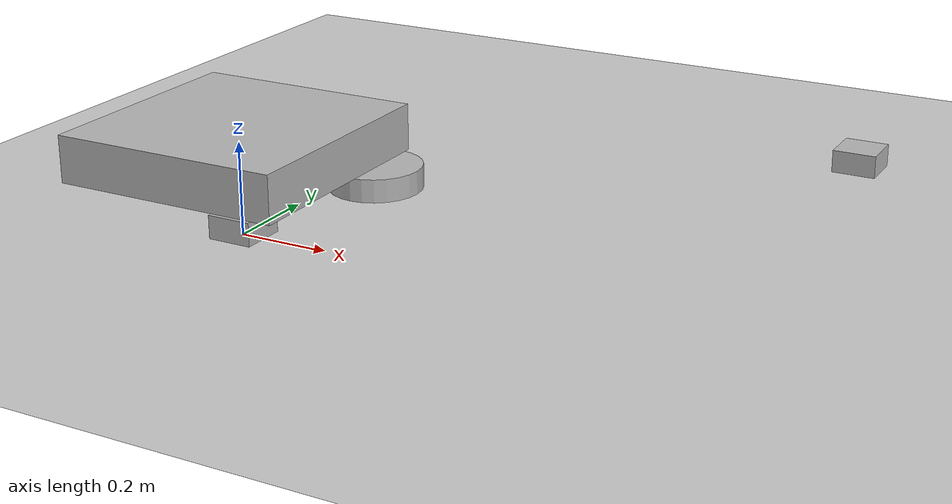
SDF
<?xml version="1.0" ?>
<sdf version="1.6">
  <world name="ethiopia_world">
    <include>
      <uri>model://ground_plane</uri>
    </include>
    <include>
      <uri>model://sun</uri>
    </include>

    <!-- Define the robot model -->
    <include>
      <uri>model://three_wheel_robot</uri>
      <pose>0 0 0.1 0 0 0</pose>
    </include>

    <!-- Define other models for states -->
    <model name="Dembi_Dollo">
      <pose>0 0 0 0 0 0</pose>
      <link name="visual">
        <visual name="visual">
          <geometry>
            <box>
              <size>0.1 0.1 0.1</size>
            </box>
          </geometry>
        </visual>
      </link>
    </model>
    <model name="Gimbi">
      <pose>1 1 0 0 0 0</pose>
      <link name="visual">
        <visual name="visual">
          <geometry>
            <box>
              <size>0.1 0.1 0.1</size>
            </box>
          </geometry>
        </visual>
      </link>
    </model>
    <!-- Add more models for other states as needed -->
  </world>
</sdf>

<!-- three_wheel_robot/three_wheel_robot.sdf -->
<sdf version="1.6">
  <model name="three_wheel_robot">
    <static>false</static>
    <link name="base_link">
      <pose>0 0 0.1 0 0 0</pose>
      <collision name="collision">
        <geometry>
          <box>
            <size>0.5 0.5 0.1</size>
          </box>
        </geometry>
      </collision>
      <visual name="visual">
        <geometry>
          <box>
            <size>0.5 0.5 0.1</size>
          </box>
        </geometry>
      </visual>
      <sensor name="proximity_sensor" type="contact">
        <pose>0 0 0.1 0 0 0</pose>
        <contact>
          <topic>~/proximity_sensor</topic>
        </contact>
      </sensor>
      <sensor name="gyroscope" type="imu">
        <pose>0 0 0 0 0 0</pose>
        <imu>
          <topic>~/gyroscope</topic>
        </imu>
      </sensor>
      <sensor name="camera" type="camera">
        <pose>0.2 0 0.1 0 0 0</pose>
        <camera>
          <horizontal_fov>1.047</horizontal_fov>
          <image>
            <width>640</width>
            <height>480</height>
          </image>
          <clip>
            <near>0.1</near>
            <far>100</far>
          </clip>
        </camera>
      </sensor>
    </link>
    <link name="wheel_left">
      <pose>-0.2 0.2 0 0 0 0</pose>
      <collision name="collision">
        <geometry>
          <cylinder>
            <radius>0.1</radius>
            <length>0.05</length>
          </cylinder>
        </geometry>
      </collision>
      <visual name="visual">
        <geometry>
          <cylinder>
            <radius>0.1</radius>
            <length>0.05</length>
          </cylinder>
        </geometry>
      </visual>
    </link>
    <link name="wheel_right">
      <pose>0.2 0.2 0 0 0 0</pose>
      <collision name="collision">
        <geometry>
          <cylinder>
            <radius>0.1</radius>
            <length>0.05</length>
          </cylinder>
        </geometry>
      </collision>
      <visual name="visual">
        <geometry>
          <cylinder>
            <radius>0.1</radius>
            <length>0.05</length>
          </cylinder>
        </geometry>
      </visual>
    </link>
    <link name="wheel_rear">
      <pose>0 0.2 0 0 0 0</pose>
      <collision name="collision">
        <geometry>
          <cylinder>
            <radius>0.1</radius>
            <length>0.05</length>
          </cylinder>
        </geometry>
      </collision>
      <visual name="visual">
        <geometry>
          <cylinder>
            <radius>0.1</radius>
            <length>0.05</length>
          </cylinder>
        </geometry>
      </visual>
    </link>
    <joint name="left_wheel_hinge" type="revolute">
      <parent>base_link</parent>
      <child>wheel_left</child>
      <axis>
        <xyz>0 1 0</xyz>
        <limit>
          <lower>-1.0</lower>
          <upper>1.0</upper>
        </limit>
      </axis>
    </joint>
    <joint name="right_wheel_hinge" type="revolute">
      <parent>base_link</parent>
      <child>wheel_right</child>
      <axis>
        <xyz>0 1 0</xyz>
        <limit>
          <lower>-1.0</lower>
          <upper>1.0</upper>
        </limit>
      </axis>
    </joint>
    <joint name="rear_wheel_hinge" type="revolute">
      <parent>base_link</parent>
      <child>wheel_rear</child>
      <axis>
        <xyz>0 1 0</xyz>
        <limit>
          <lower>-1.0</lower>
          <upper>1.0</upper>
        </limit>
      </axis>
    </joint>
  </model>
</sdf>
